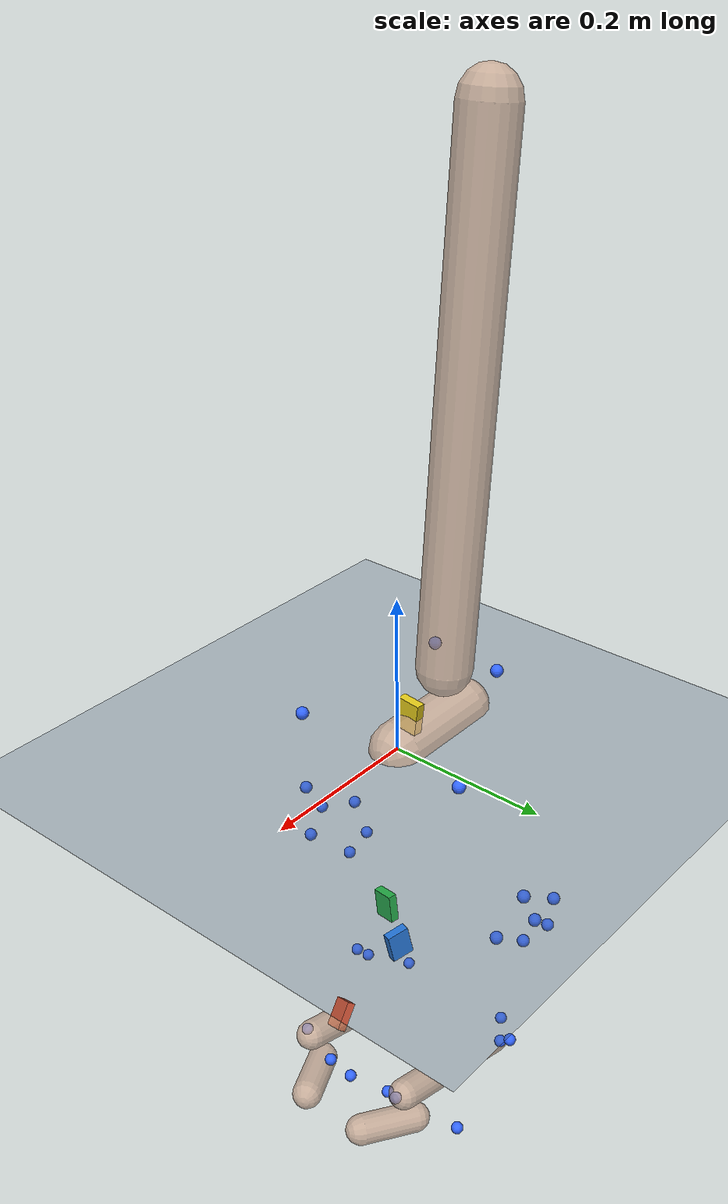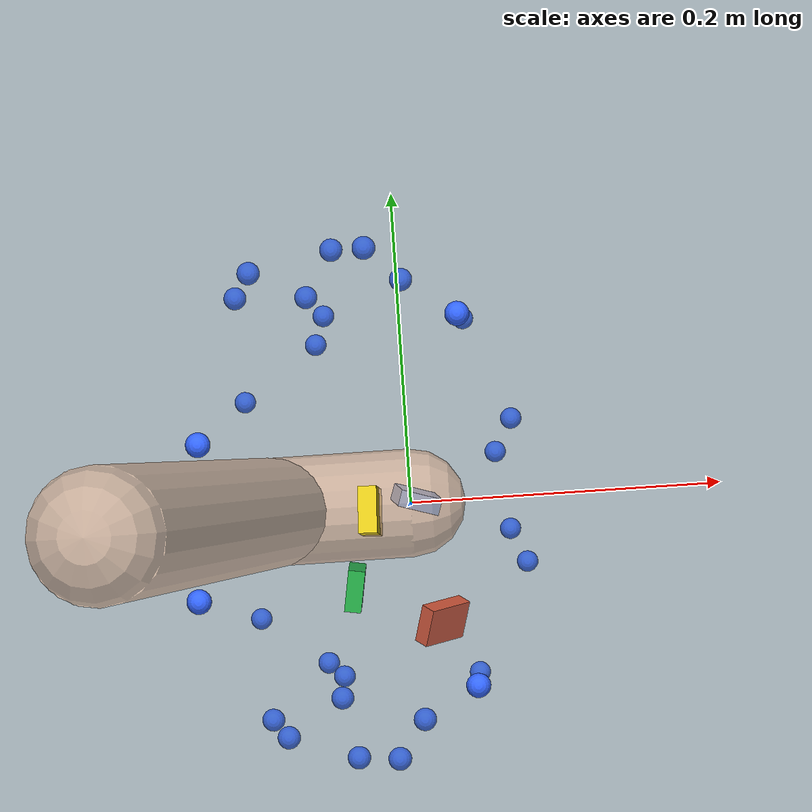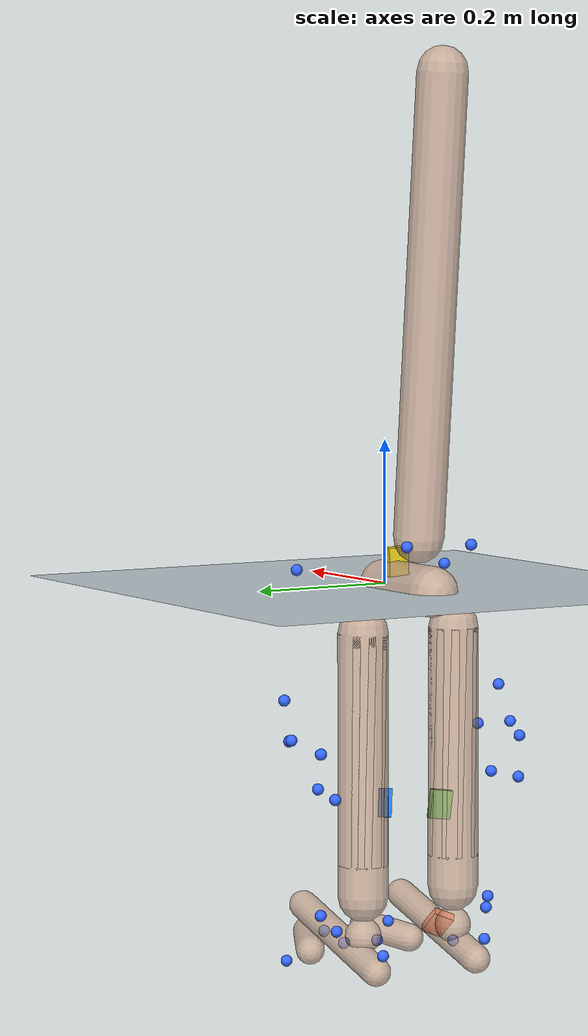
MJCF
<mujoco model="AB16">
  <compiler angle="radian" autolimits="true"/>
  <option timestep="0.005" gravity="0 0 -9.81"><flag contact="disable"/></option>
  <visual><global offwidth="1280" offheight="720"/></visual>
  <default><joint limited="false" damping="0"/><geom contype="0" conaffinity="0"/></default>
  <asset>
    <texture name="grid" type="2d" builtin="checker" rgb1="0.2 0.3 0.4" rgb2="0.3 0.4 0.5" width="512" height="512"/>
    <material name="grid" texture="grid" texrepeat="2 2" texuniform="true"/>
    <material name="skin" rgba="0.8 0.65 0.55 0.7"/>
  </asset>
  <worldbody>
    <light pos="0 0 4" dir="0 0 -1"/>
    <geom name="floor" type="plane" size="0 0 0.05" material="grid"/>
    <body name="pelvis" pos="0 0 0" quat="1 0 0 0">
      <joint name="pelvis_tx" type="slide" axis="1 0 0"/>
      <joint name="pelvis_ty" type="slide" axis="0 0 1"/>
      <joint name="pelvis_tz" type="slide" axis="0 -1 0"/>
      <joint name="pelvis_tilt" type="hinge" axis="0 -1 0"/>
      <joint name="pelvis_list" type="hinge" axis="1 0 0"/>
      <joint name="pelvis_rotation" type="hinge" axis="0 0 1"/>
      <inertial pos="-0.061785257 0 0" mass="8.62303" diaginertia="0.086230327 0.086230327 0.086230327"/>
      <geom type="capsule" fromto="0 0 0 -0.12357051 0 0" size="0.035" material="skin" mass="0"/>
      <site name="m_R_ASIS" pos="0.035348723 -0.11986572 0.018933387" size="0.008" rgba="0.2 0.4 1 1" group="2"/>
      <site name="m_L_ASIS" pos="0.037436552 0.11958289 0.022082697" size="0.008" rgba="0.2 0.4 1 1" group="2"/>
      <site name="m_L_PSIS" pos="-0.13186088 0.046029131 0.063772759" size="0.008" rgba="0.2 0.4 1 1" group="2"/>
      <site name="m_R_PSIS" pos="-0.1375951 -0.053068124 0.062888783" size="0.008" rgba="0.2 0.4 1 1" group="2"/>
      <body name="femur_r" pos="-0.061785257 -0.072971272 -0.057765282" quat="1 0 0 0">
        <joint name="hip_flexion_r" type="hinge" axis="0 -1 0"/>
        <joint name="hip_adduction_r" type="hinge" axis="1 0 0"/>
        <joint name="hip_rotation_r" type="hinge" axis="0 0 1"/>
        <inertial pos="0 0 -0.15945939" mass="6.81042" diaginertia="0.068104166 0.068104166 0.068104166"/>
        <geom type="capsule" fromto="0 0 0 0 0 -0.31891877" size="0.035" material="skin" mass="0"/>
        <site name="m_R_Thigh_Upper" pos="0.04075405 -0.10193413 -0.092389746" size="0.008" rgba="0.2 0.4 1 1" group="2"/>
        <site name="m_R_Thigh_Front" pos="0.059029638 -0.079564574 -0.14869617" size="0.008" rgba="0.2 0.4 1 1" group="2"/>
        <site name="m_R_Thigh_Rear" pos="0.011696705 -0.10255957 -0.14149905" size="0.008" rgba="0.2 0.4 1 1" group="2"/>
        <site name="m_R_Knee_Lat" pos="-0.0014357964 -0.057007593 -0.38355226" size="0.008" rgba="0.2 0.4 1 1" group="2"/>
        <site name="imu_thigh" type="box" size="0.02 0.015 0.006" pos="0.062122859 0.072661218 -0.24917956" quat="0.58200979 0.480422 -0.55549562 0.34911877" rgba="0.1 0.5 1 1" group="1"/>
        <body name="tibia_r" pos="0 0 0" quat="1 0 0 0">
          <joint name="knee_r_translation1" type="slide" axis="1 0 0"/>
          <joint name="knee_r_translation2" type="slide" axis="0 0 1"/>
          <joint name="knee_angle_r" type="hinge" axis="0 -1 0"/>
          <inertial pos="0 0 -0.18142721" mass="2.7146" diaginertia="0.027146042 0.027146042 0.027146042"/>
          <geom type="capsule" fromto="0 0 0 0 0 -0.36285443" size="0.035" material="skin" mass="0"/>
          <site name="m_R_Shank_Upper" pos="-0.036442969 -0.086248941 -0.15431588" size="0.008" rgba="0.2 0.4 1 1" group="2"/>
          <site name="m_R_Shank_Front" pos="0.0010844908 -0.063969468 -0.20759272" size="0.008" rgba="0.2 0.4 1 1" group="2"/>
          <site name="m_R_Shank_Rear" pos="-0.048831589 -0.076379057 -0.20970151" size="0.008" rgba="0.2 0.4 1 1" group="2"/>
          <site name="m_R_Ankle_Lat" pos="-0.012869413 -0.046745462 -0.39656626" size="0.008" rgba="0.2 0.4 1 1" group="2"/>
          <site name="imu_shank" type="box" size="0.02 0.015 0.006" pos="0.014237893 0.012372889 -0.24920517" quat="0.70422776 0.10400841 0.70215373 -0.015021987" rgba="0.1 0.8 0.2 1" group="1"/>
          <body name="talus_r" pos="0 0 -0.41785593" quat="1 0 0 0">
            <joint name="ankle_angle_r" type="hinge" axis="-0.10501355 -0.97912632 -0.17402245"/>
            <inertial pos="0 0 0" mass="0.0732193" diaginertia="0.00073219264 0.00073219264 0.00073219264"/>
            <geom type="sphere" size="0.025" material="skin" mass="0"/>
            <body name="calcn_r" pos="-0.047392636 -0.0076963231 -0.040765247" quat="1 0 0 0">
              <joint name="subtalar_angle_r" type="hinge" axis="0.78717961 0.12094949 0.60474746"/>
              <inertial pos="0.098661092 0 0.029598328" mass="0.915241" diaginertia="0.009152408 0.009152408 0.009152408"/>
              <geom type="capsule" fromto="0 0 0 0.19732218 0 0.059196655" size="0.02" material="skin" mass="0"/>
              <site name="m_R_Heel" pos="-0.015331036 -0.0038245746 0.030106624" size="0.008" rgba="0.2 0.4 1 1" group="2"/>
              <site name="m_R_Toe_Lat" pos="0.14760552 -0.056780153 -0.0073854545" size="0.008" rgba="0.2 0.4 1 1" group="2"/>
              <site name="m_R_Toe_Med" pos="0.17807591 0.051619498 -0.00056824827" size="0.008" rgba="0.2 0.4 1 1" group="2"/>
              <site name="m_R_Toe_Tip" pos="0.18905266 0.026243626 0.02253281" size="0.008" rgba="0.2 0.4 1 1" group="2"/>
              <site name="imu_foot" type="box" size="0.02 0.015 0.006" pos="0.12152565 -0.014667436 0.028100158" quat="0.89073674 0.23395945 0.38790937 -0.037112828" rgba="1 0.3 0.1 1" group="1"/>
              <body name="toes_r" pos="0.17640603 -0.0010655398 -0.0019732218" quat="1 0 0 0">
                <joint name="mtp_angle_r" type="hinge" axis="-0.5809544 -0.81393611 0"/>
                <inertial pos="0.034136738 0.017265691 0.0059196655" mass="0.158593" diaginertia="0.0015859293 0.0015859293 0.0015859293"/>
                <geom type="capsule" fromto="0 0 0 0.068273476 0.034531382 0.011839331" size="0.02" material="skin" mass="0"/>
              </body>
            </body>
          </body>
        </body>
      </body>
      <body name="femur_l" pos="-0.061785257 0.072971272 -0.057765282" quat="1 0 0 0">
        <joint name="hip_flexion_l" type="hinge" axis="0 -1 0"/>
        <joint name="hip_adduction_l" type="hinge" axis="-1 0 0"/>
        <joint name="hip_rotation_l" type="hinge" axis="0 0 -1"/>
        <inertial pos="0 0 -0.15945939" mass="6.81042" diaginertia="0.068104166 0.068104166 0.068104166"/>
        <geom type="capsule" fromto="0 0 0 0 0 -0.31891877" size="0.035" material="skin" mass="0"/>
        <site name="m_L_Thigh_Upper" pos="0.039221036 0.10119108 -0.090153234" size="0.008" rgba="0.2 0.4 1 1" group="2"/>
        <site name="m_L_Thigh_Front" pos="0.062360819 0.080547381 -0.15070693" size="0.008" rgba="0.2 0.4 1 1" group="2"/>
        <site name="m_L_Thigh_Rear" pos="0.015686917 0.10377431 -0.14173001" size="0.008" rgba="0.2 0.4 1 1" group="2"/>
        <site name="m_L_Knee_Lat" pos="0.00071348177 0.066992544 -0.38356253" size="0.008" rgba="0.2 0.4 1 1" group="2"/>
        <body name="tibia_l" pos="0 0 0" quat="1 0 0 0">
          <joint name="knee_l_translation1" type="slide" axis="1 0 0"/>
          <joint name="knee_l_translation2" type="slide" axis="0 0 1"/>
          <joint name="knee_angle_l" type="hinge" axis="0 -1 0"/>
          <inertial pos="0 0 -0.18142721" mass="2.7146" diaginertia="0.027146042 0.027146042 0.027146042"/>
          <geom type="capsule" fromto="0 0 0 0 0 -0.36285443" size="0.035" material="skin" mass="0"/>
          <site name="m_L_Shank_Upper" pos="-0.043192989 0.092001599 -0.15394162" size="0.008" rgba="0.2 0.4 1 1" group="2"/>
          <site name="m_L_Shank_Front" pos="-0.0059184949 0.074802367 -0.2078853" size="0.008" rgba="0.2 0.4 1 1" group="2"/>
          <site name="m_L_Shank_Rear" pos="-0.056438201 0.077591211 -0.21481868" size="0.008" rgba="0.2 0.4 1 1" group="2"/>
          <site name="m_L_Ankle_Lat" pos="-0.0071940978 0.046467891 -0.40624043" size="0.008" rgba="0.2 0.4 1 1" group="2"/>
          <body name="talus_l" pos="0 0 -0.41785593" quat="1 0 0 0">
            <joint name="ankle_angle_l" type="hinge" axis="0.10501355 -0.97912632 0.17402245"/>
            <inertial pos="0 0 0" mass="0.0732193" diaginertia="0.00073219264 0.00073219264 0.00073219264"/>
            <geom type="sphere" size="0.025" material="skin" mass="0"/>
            <body name="calcn_l" pos="-0.047392636 0.0076963231 -0.040765247" quat="1 0 0 0">
              <joint name="subtalar_angle_l" type="hinge" axis="-0.78717961 0.12094949 -0.60474746"/>
              <inertial pos="0.098661092 0 0.029598328" mass="0.915241" diaginertia="0.009152408 0.009152408 0.009152408"/>
              <geom type="capsule" fromto="0 0 0 0.19732218 0 0.059196655" size="0.02" material="skin" mass="0"/>
              <site name="m_L_Heel" pos="-0.016940303 -0.00044442608 0.024789852" size="0.008" rgba="0.2 0.4 1 1" group="2"/>
              <site name="m_L_Toe_Lat" pos="0.15225741 0.053268293 -0.0067328972" size="0.008" rgba="0.2 0.4 1 1" group="2"/>
              <site name="m_L_Toe_Med" pos="0.17023741 -0.050213872 0.0037178337" size="0.008" rgba="0.2 0.4 1 1" group="2"/>
              <site name="m_L_Toe_Tip" pos="0.18357597 -0.025664419 0.021079389" size="0.008" rgba="0.2 0.4 1 1" group="2"/>
              <body name="toes_l" pos="0.17640603 0.0010655398 -0.0019732218" quat="1 0 0 0">
                <joint name="mtp_angle_l" type="hinge" axis="0.5809544 -0.81393611 0"/>
                <inertial pos="0.034136738 -0.017265691 0.0059196655" mass="0.158593" diaginertia="0.0015859293 0.0015859293 0.0015859293"/>
                <geom type="capsule" fromto="0 0 0 0.068273476 -0.034531382 0.011839331" size="0.02" material="skin" mass="0"/>
              </body>
            </body>
          </body>
        </body>
      </body>
      <body name="torso" pos="-0.08800248 0 0.071223457" quat="1 0 0 0">
        <joint name="lumbar_extension" type="hinge" axis="0 -1 0"/>
        <joint name="lumbar_bending" type="hinge" axis="1 0 0"/>
        <joint name="lumbar_rotation" type="hinge" axis="0 0 1"/>
        <inertial pos="-0.02946297 0 0.31427168" mass="25.0678" diaginertia="0.25067787 0.25067787 0.25067787"/>
        <geom type="capsule" fromto="0 0 0 -0.058925941 0 0.62854337" size="0.035" material="skin" mass="0"/>
        <site name="imu_trunk" type="box" size="0.02 0.015 0.006" pos="0.06141504 -0.0032201858 -0.037520518" quat="0.7289483 -0.010678814 0.68337788 -0.038923151" rgba="0.9 0.8 0.1 1" group="1"/>
      </body>
    </body>
  </worldbody>
  <sensor>
<accelerometer name="imu_foot_acc" site="imu_foot"/>
<gyro name="imu_foot_gyr" site="imu_foot"/>
<accelerometer name="imu_shank_acc" site="imu_shank"/>
<gyro name="imu_shank_gyr" site="imu_shank"/>
<accelerometer name="imu_thigh_acc" site="imu_thigh"/>
<gyro name="imu_thigh_gyr" site="imu_thigh"/>
<accelerometer name="imu_trunk_acc" site="imu_trunk"/>
<gyro name="imu_trunk_gyr" site="imu_trunk"/>
</sensor>
</mujoco>
